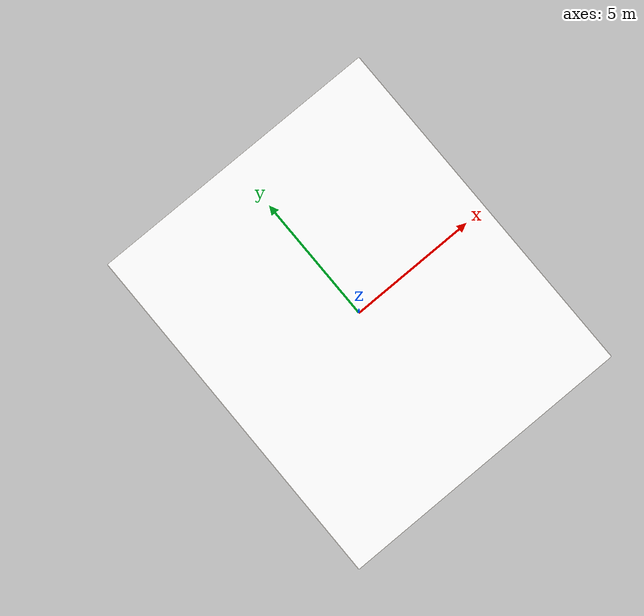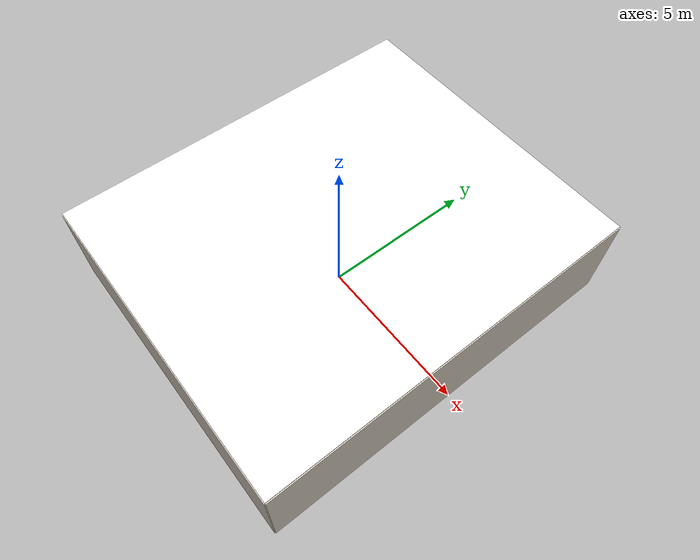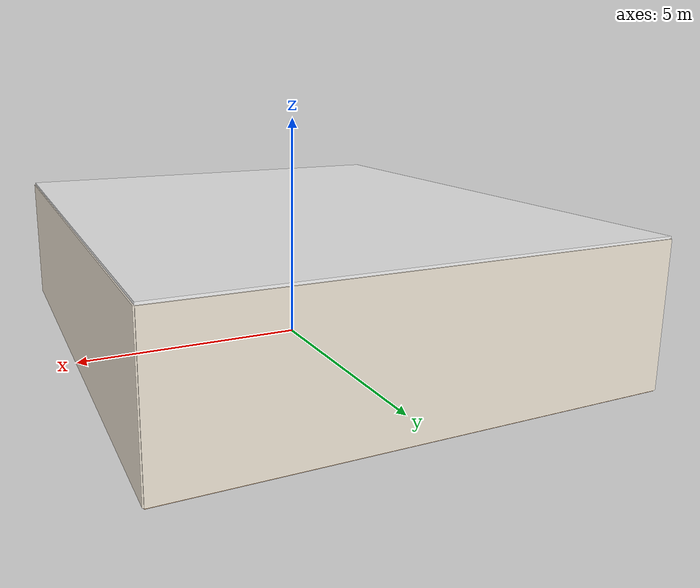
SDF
<?xml version="1.0" ?>
<sdf version="1.6">
  <world name="living_room">

    <!-- ===== Physics & Scene ===== -->
    <physics type="ode">
      <real_time_update_rate>1000</real_time_update_rate>
      <max_step_size>0.001</max_step_size>
    </physics>

    <scene>
      <ambient>0.6 0.6 0.6 1</ambient>
      <background>0.7 0.8 0.9 1</background>
      <shadows>true</shadows>
    </scene>

    <!-- ===== Lighting ===== -->
    <light name="ceiling_light_1" type="point">
      <pose>-2.5 -3.0 2.8 0 0 0</pose>
      <diffuse>1 1 0.9 1</diffuse>
      <specular>0.3 0.3 0.3 1</specular>
      <attenuation>
        <range>20</range>
        <constant>0.4</constant>
        <linear>0.01</linear>
        <quadratic>0.001</quadratic>
      </attenuation>
      <cast_shadows>true</cast_shadows>
    </light>

    <light name="ceiling_light_2" type="point">
      <pose>2.5 3.0 2.8 0 0 0</pose>
      <diffuse>1 1 0.9 1</diffuse>
      <specular>0.3 0.3 0.3 1</specular>
      <attenuation>
        <range>20</range>
        <constant>0.4</constant>
        <linear>0.01</linear>
        <quadratic>0.001</quadratic>
      </attenuation>
      <cast_shadows>true</cast_shadows>
    </light>

    <light name="sun" type="directional">
      <cast_shadows>true</cast_shadows>
      <pose>0 0 10 0 0 0</pose>
      <diffuse>0.8 0.8 0.8 1</diffuse>
      <specular>0.2 0.2 0.2 1</specular>
      <direction>-0.5 0.1 -0.9</direction>
    </light>

    <!--   ROOM  10 m (X) x 12 m (Y), 3.0 m tall              -->
    <!--   Origin at room centre                               -->
    <!--   Half-extents: hx=5.0, hy=6.0                       -->

    <!-- FLOOR -->
    <model name="floor">
      <static>true</static>
      <pose>0 0 0 0 0 0</pose>
      <link name="link">
        <collision name="collision">
          <geometry><box><size>10.0 12.0 0.05</size></box></geometry>
        </collision>
        <visual name="visual">
          <geometry><box><size>10.0 12.0 0.05</size></box></geometry>
          <material>
            <ambient>0.65 0.50 0.35 1</ambient>
            <diffuse>0.65 0.50 0.35 1</diffuse>
          </material>
        </visual>
      </link>
    </model>

    <!-- CEILING -->
    <model name="ceiling">
      <static>true</static>
      <pose>0 0 3.025 0 0 0</pose>
      <link name="link">
        <collision name="collision">
          <geometry><box><size>10.0 12.0 0.05</size></box></geometry>
        </collision>
        <visual name="visual">
          <geometry><box><size>10.0 12.0 0.05</size></box></geometry>
          <material>
            <ambient>0.95 0.95 0.95 1</ambient>
            <diffuse>0.95 0.95 0.95 1</diffuse>
          </material>
        </visual>
      </link>
    </model>

    <!-- WALL North (y=+6.0) -->
    <model name="wall_north">
      <static>true</static>
      <pose>0 6.0 1.50 0 0 0</pose>
      <link name="link">
        <collision name="collision">
          <geometry><box><size>10.0 0.05 3.0</size></box></geometry>
        </collision>
        <visual name="visual">
          <geometry><box><size>10.0 0.05 3.0</size></box></geometry>
          <material><ambient>0.92 0.88 0.82 1</ambient><diffuse>0.92 0.88 0.82 1</diffuse></material>
        </visual>
      </link>
    </model>

    <!-- WALL South (y=-6.0) -->
    <model name="wall_south">
      <static>true</static>
      <pose>0 -6.0 1.50 0 0 0</pose>
      <link name="link">
        <collision name="collision">
          <geometry><box><size>10.0 0.05 3.0</size></box></geometry>
        </collision>
        <visual name="visual">
          <geometry><box><size>10.0 0.05 3.0</size></box></geometry>
          <material><ambient>0.92 0.88 0.82 1</ambient><diffuse>0.92 0.88 0.82 1</diffuse></material>
        </visual>
      </link>
    </model>

    <!-- WALL East (x=+5.0) -->
    <model name="wall_east">
      <static>true</static>
      <pose>5.0 0 1.50 0 0 0</pose>
      <link name="link">
        <collision name="collision">
          <geometry><box><size>0.05 12.0 3.0</size></box></geometry>
        </collision>
        <visual name="visual">
          <geometry><box><size>0.05 12.0 3.0</size></box></geometry>
          <material><ambient>0.92 0.88 0.82 1</ambient><diffuse>0.92 0.88 0.82 1</diffuse></material>
        </visual>
      </link>
    </model>

    <!-- WALL West (x=-5.0) -->
    <model name="wall_west">
      <static>true</static>
      <pose>-5.0 0 1.50 0 0 0</pose>
      <link name="link">
        <collision name="collision">
          <geometry><box><size>0.05 12.0 3.0</size></box></geometry>
        </collision>
        <visual name="visual">
          <geometry><box><size>0.05 12.0 3.0</size></box></geometry>
          <material><ambient>0.92 0.88 0.82 1</ambient><diffuse>0.92 0.88 0.82 1</diffuse></material>
        </visual>
      </link>
    </model>

    <!--   SOFA – against North wall                           -->

    <model name="sofa_seat">
      <static>true</static>
      <pose>0 4.60 0.22 0 0 0</pose>
      <link name="link">
        <collision name="collision"><geometry><box><size>2.20 0.90 0.40</size></box></geometry></collision>
        <visual name="visual"><geometry><box><size>2.20 0.90 0.40</size></box></geometry>
          <material><ambient>0.25 0.35 0.55 1</ambient><diffuse>0.25 0.35 0.55 1</diffuse></material></visual>
      </link>
    </model>

    <model name="sofa_back">
      <static>true</static>
      <pose>0 5.03 0.65 0 0 0</pose>
      <link name="link">
        <collision name="collision"><geometry><box><size>2.20 0.12 0.62</size></box></geometry></collision>
        <visual name="visual"><geometry><box><size>2.20 0.12 0.62</size></box></geometry>
          <material><ambient>0.22 0.31 0.50 1</ambient><diffuse>0.22 0.31 0.50 1</diffuse></material></visual>
      </link>
    </model>

    <model name="sofa_arm_left">
      <static>true</static>
      <pose>-1.06 4.60 0.52 0 0 0</pose>
      <link name="link">
        <collision name="collision"><geometry><box><size>0.12 0.90 0.56</size></box></geometry></collision>
        <visual name="visual"><geometry><box><size>0.12 0.90 0.56</size></box></geometry>
          <material><ambient>0.22 0.31 0.50 1</ambient><diffuse>0.22 0.31 0.50 1</diffuse></material></visual>
      </link>
    </model>

    <model name="sofa_arm_right">
      <static>true</static>
      <pose>1.06 4.60 0.52 0 0 0</pose>
      <link name="link">
        <collision name="collision"><geometry><box><size>0.12 0.90 0.56</size></box></geometry></collision>
        <visual name="visual"><geometry><box><size>0.12 0.90 0.56</size></box></geometry>
          <material><ambient>0.22 0.31 0.50 1</ambient><diffuse>0.22 0.31 0.50 1</diffuse></material></visual>
      </link>
    </model>

    <!--   COFFEE TABLE – in front of sofa                     -->

    <model name="coffee_table_top">
      <static>true</static>
      <pose>0 3.20 0.40 0 0 0</pose>
      <link name="link">
        <collision name="collision"><geometry><box><size>1.20 0.60 0.05</size></box></geometry></collision>
        <visual name="visual"><geometry><box><size>1.20 0.60 0.05</size></box></geometry>
          <material><ambient>0.45 0.28 0.12 1</ambient><diffuse>0.45 0.28 0.12 1</diffuse></material></visual>
      </link>
    </model>

    <model name="ct_leg_fl"><static>true</static><pose>-0.55 2.95 0.19 0 0 0</pose>
      <link name="link"><collision name="c"><geometry><box><size>0.06 0.06 0.38</size></box></geometry></collision>
        <visual name="v"><geometry><box><size>0.06 0.06 0.38</size></box></geometry>
          <material><ambient>0.30 0.18 0.08 1</ambient><diffuse>0.30 0.18 0.08 1</diffuse></material></visual></link>
    </model>
    <model name="ct_leg_fr"><static>true</static><pose>0.55 2.95 0.19 0 0 0</pose>
      <link name="link"><collision name="c"><geometry><box><size>0.06 0.06 0.38</size></box></geometry></collision>
        <visual name="v"><geometry><box><size>0.06 0.06 0.38</size></box></geometry>
          <material><ambient>0.30 0.18 0.08 1</ambient><diffuse>0.30 0.18 0.08 1</diffuse></material></visual></link>
    </model>
    <model name="ct_leg_bl"><static>true</static><pose>-0.55 3.45 0.19 0 0 0</pose>
      <link name="link"><collision name="c"><geometry><box><size>0.06 0.06 0.38</size></box></geometry></collision>
        <visual name="v"><geometry><box><size>0.06 0.06 0.38</size></box></geometry>
          <material><ambient>0.30 0.18 0.08 1</ambient><diffuse>0.30 0.18 0.08 1</diffuse></material></visual></link>
    </model>
    <model name="ct_leg_br"><static>true</static><pose>0.55 3.45 0.19 0 0 0</pose>
      <link name="link"><collision name="c"><geometry><box><size>0.06 0.06 0.38</size></box></geometry></collision>
        <visual name="v"><geometry><box><size>0.06 0.06 0.38</size></box></geometry>
          <material><ambient>0.30 0.18 0.08 1</ambient><diffuse>0.30 0.18 0.08 1</diffuse></material></visual></link>
    </model>

    <!--   ARMCHAIR LEFT – west side, angled toward table      -->

    <model name="chair_left_seat">
      <static>true</static>
      <pose>-2.20 3.20 0.22 0 0 0.5236</pose>
      <link name="link">
        <collision name="collision"><geometry><box><size>0.80 0.80 0.38</size></box></geometry></collision>
        <visual name="visual"><geometry><box><size>0.80 0.80 0.38</size></box></geometry>
          <material><ambient>0.55 0.28 0.18 1</ambient><diffuse>0.55 0.28 0.18 1</diffuse></material></visual>
      </link>
    </model>

    <model name="chair_left_back">
      <static>true</static>
      <pose>-2.55 3.48 0.62 0 0 0.5236</pose>
      <link name="link">
        <collision name="collision"><geometry><box><size>0.10 0.80 0.56</size></box></geometry></collision>
        <visual name="visual"><geometry><box><size>0.10 0.80 0.56</size></box></geometry>
          <material><ambient>0.48 0.24 0.14 1</ambient><diffuse>0.48 0.24 0.14 1</diffuse></material></visual>
      </link>
    </model>

    <!--   ARMCHAIR RIGHT – east side, angled toward table     -->

    <model name="chair_right_seat">
      <static>true</static>
      <pose>2.20 3.20 0.22 0 0 -0.5236</pose>
      <link name="link">
        <collision name="collision"><geometry><box><size>0.80 0.80 0.38</size></box></geometry></collision>
        <visual name="visual"><geometry><box><size>0.80 0.80 0.38</size></box></geometry>
          <material><ambient>0.55 0.28 0.18 1</ambient><diffuse>0.55 0.28 0.18 1</diffuse></material></visual>
      </link>
    </model>

    <model name="chair_right_back">
      <static>true</static>
      <pose>2.55 3.48 0.62 0 0 -0.5236</pose>
      <link name="link">
        <collision name="collision"><geometry><box><size>0.10 0.80 0.56</size></box></geometry></collision>
        <visual name="visual"><geometry><box><size>0.10 0.80 0.56</size></box></geometry>
          <material><ambient>0.48 0.24 0.14 1</ambient><diffuse>0.48 0.24 0.14 1</diffuse></material></visual>
      </link>
    </model>

    <!--   DINING TABLE – centre of room with 4 chairs         -->

    <model name="dining_table_top">
      <static>true</static>
      <pose>0 0 0.73 0 0 0</pose>
      <link name="link">
        <collision name="collision"><geometry><box><size>1.60 0.90 0.05</size></box></geometry></collision>
        <visual name="visual"><geometry><box><size>1.60 0.90 0.05</size></box></geometry>
          <material><ambient>0.45 0.28 0.12 1</ambient><diffuse>0.45 0.28 0.12 1</diffuse></material></visual>
      </link>
    </model>

    <model name="dt_leg_fl"><static>true</static><pose>-0.72 -0.38 0.35 0 0 0</pose>
      <link name="link"><collision name="c"><geometry><box><size>0.07 0.07 0.70</size></box></geometry></collision>
        <visual name="v"><geometry><box><size>0.07 0.07 0.70</size></box></geometry>
          <material><ambient>0.30 0.18 0.08 1</ambient><diffuse>0.30 0.18 0.08 1</diffuse></material></visual></link>
    </model>
    <model name="dt_leg_fr"><static>true</static><pose>0.72 -0.38 0.35 0 0 0</pose>
      <link name="link"><collision name="c"><geometry><box><size>0.07 0.07 0.70</size></box></geometry></collision>
        <visual name="v"><geometry><box><size>0.07 0.07 0.70</size></box></geometry>
          <material><ambient>0.30 0.18 0.08 1</ambient><diffuse>0.30 0.18 0.08 1</diffuse></material></visual></link>
    </model>
    <model name="dt_leg_bl"><static>true</static><pose>-0.72 0.38 0.35 0 0 0</pose>
      <link name="link"><collision name="c"><geometry><box><size>0.07 0.07 0.70</size></box></geometry></collision>
        <visual name="v"><geometry><box><size>0.07 0.07 0.70</size></box></geometry>
          <material><ambient>0.30 0.18 0.08 1</ambient><diffuse>0.30 0.18 0.08 1</diffuse></material></visual></link>
    </model>
    <model name="dt_leg_br"><static>true</static><pose>0.72 0.38 0.35 0 0 0</pose>
      <link name="link"><collision name="c"><geometry><box><size>0.07 0.07 0.70</size></box></geometry></collision>
        <visual name="v"><geometry><box><size>0.07 0.07 0.70</size></box></geometry>
          <material><ambient>0.30 0.18 0.08 1</ambient><diffuse>0.30 0.18 0.08 1</diffuse></material></visual></link>
    </model>

    <model name="dchair_south"><static>true</static><pose>0 -0.90 0.22 0 0 0</pose>
      <link name="link"><collision name="c"><geometry><box><size>0.48 0.48 0.40</size></box></geometry></collision>
        <visual name="v"><geometry><box><size>0.48 0.48 0.40</size></box></geometry>
          <material><ambient>0.60 0.35 0.15 1</ambient><diffuse>0.60 0.35 0.15 1</diffuse></material></visual></link>
    </model>
    <model name="dchair_north"><static>true</static><pose>0 0.90 0.22 0 0 3.1416</pose>
      <link name="link"><collision name="c"><geometry><box><size>0.48 0.48 0.40</size></box></geometry></collision>
        <visual name="v"><geometry><box><size>0.48 0.48 0.40</size></box></geometry>
          <material><ambient>0.60 0.35 0.15 1</ambient><diffuse>0.60 0.35 0.15 1</diffuse></material></visual></link>
    </model>
    <model name="dchair_east"><static>true</static><pose>1.25 0 0.22 0 0 -1.5708</pose>
      <link name="link"><collision name="c"><geometry><box><size>0.48 0.48 0.40</size></box></geometry></collision>
        <visual name="v"><geometry><box><size>0.48 0.48 0.40</size></box></geometry>
          <material><ambient>0.60 0.35 0.15 1</ambient><diffuse>0.60 0.35 0.15 1</diffuse></material></visual></link>
    </model>
    <model name="dchair_west"><static>true</static><pose>-1.25 0 0.22 0 0 1.5708</pose>
      <link name="link"><collision name="c"><geometry><box><size>0.48 0.48 0.40</size></box></geometry></collision>
        <visual name="v"><geometry><box><size>0.48 0.48 0.40</size></box></geometry>
          <material><ambient>0.60 0.35 0.15 1</ambient><diffuse>0.60 0.35 0.15 1</diffuse></material></visual></link>
    </model>

    <!--   TV STAND + SCREEN – South wall                      -->

    <model name="tv_stand">
      <static>true</static>
      <pose>0 -5.55 0.25 0 0 0</pose>
      <link name="link">
        <collision name="collision"><geometry><box><size>1.80 0.40 0.45</size></box></geometry></collision>
        <visual name="visual"><geometry><box><size>1.80 0.40 0.45</size></box></geometry>
          <material><ambient>0.18 0.18 0.18 1</ambient><diffuse>0.18 0.18 0.18 1</diffuse></material></visual>
      </link>
    </model>

    <model name="tv_screen">
      <static>true</static>
      <pose>0 -5.72 1.05 0 0 0</pose>
      <link name="link">
        <collision name="collision"><geometry><box><size>1.55 0.07 0.88</size></box></geometry></collision>
        <visual name="visual"><geometry><box><size>1.55 0.07 0.88</size></box></geometry>
          <material><ambient>0.05 0.05 0.05 1</ambient><diffuse>0.05 0.05 0.05 1</diffuse></material></visual>
      </link>
    </model>

    <!--   BOOKSHELF – West wall                               -->

    <model name="bookshelf">
      <static>true</static>
      <pose>-4.75 -2.50 0.95 0 0 0</pose>
      <link name="link">
        <collision name="collision"><geometry><box><size>0.30 1.20 1.90</size></box></geometry></collision>
        <visual name="visual"><geometry><box><size>0.30 1.20 1.90</size></box></geometry>
          <material><ambient>0.50 0.32 0.14 1</ambient><diffuse>0.50 0.32 0.14 1</diffuse></material></visual>
      </link>
    </model>

    <!--   SIDE TABLE – East wall                              -->

    <model name="side_table_top">
      <static>true</static>
      <pose>3.80 -2.50 0.74 0 0 0</pose>
      <link name="link">
        <collision name="collision"><geometry><box><size>0.90 0.90 0.04</size></box></geometry></collision>
        <visual name="visual"><geometry><box><size>0.90 0.90 0.04</size></box></geometry>
          <material><ambient>0.45 0.28 0.12 1</ambient><diffuse>0.45 0.28 0.12 1</diffuse></material></visual>
      </link>
    </model>

    <model name="side_table_base">
      <static>true</static>
      <pose>3.80 -2.50 0.36 0 0 0</pose>
      <link name="link">
        <collision name="collision"><geometry><box><size>0.08 0.08 0.72</size></box></geometry></collision>
        <visual name="visual"><geometry><box><size>0.08 0.08 0.72</size></box></geometry>
          <material><ambient>0.30 0.18 0.08 1</ambient><diffuse>0.30 0.18 0.08 1</diffuse></material></visual>
      </link>
    </model>

    <!--   RANDOM OBJECTS                                       -->

    <!-- 1. Vase on coffee table -->
    <model name="vase">
      <static>false</static>
      <pose>0.38 3.20 0.52 0 0 0</pose>
      <link name="link">
        <inertial><mass>0.5</mass></inertial>
        <collision name="collision"><geometry><cylinder><radius>0.07</radius><length>0.24</length></cylinder></geometry></collision>
        <visual name="visual"><geometry><cylinder><radius>0.07</radius><length>0.24</length></cylinder></geometry>
          <material><ambient>0.80 0.50 0.10 1</ambient><diffuse>0.80 0.50 0.10 1</diffuse></material></visual>
      </link>
    </model>

    <!-- 2. Remote on coffee table -->
    <model name="remote_control">
      <static>false</static>
      <pose>-0.25 3.15 0.44 0 0 0.3</pose>
      <link name="link">
        <inertial><mass>0.15</mass></inertial>
        <collision name="collision"><geometry><box><size>0.18 0.06 0.02</size></box></geometry></collision>
        <visual name="visual"><geometry><box><size>0.18 0.06 0.02</size></box></geometry>
          <material><ambient>0.10 0.10 0.10 1</ambient><diffuse>0.10 0.10 0.10 1</diffuse></material></visual>
      </link>
    </model>

    <!-- 3. Mug on side table -->
    <model name="mug">
      <static>false</static>
      <pose>3.90 -2.45 0.81 0 0 0</pose>
      <link name="link">
        <inertial><mass>0.3</mass></inertial>
        <collision name="collision"><geometry><cylinder><radius>0.04</radius><length>0.10</length></cylinder></geometry></collision>
        <visual name="visual"><geometry><cylinder><radius>0.04</radius><length>0.10</length></cylinder></geometry>
          <material><ambient>0.85 0.20 0.20 1</ambient><diffuse>0.85 0.20 0.20 1</diffuse></material></visual>
      </link>
    </model>

    <!-- 4. Ball near east wall -->
    <model name="ball">
      <static>false</static>
      <pose>4.20 1.50 0.09 0 0 0</pose>
      <link name="link">
        <inertial><mass>0.1</mass></inertial>
        <collision name="collision"><geometry><sphere><radius>0.09</radius></sphere></geometry></collision>
        <visual name="visual"><geometry><sphere><radius>0.09</radius></sphere></geometry>
          <material><ambient>0.90 0.80 0.10 1</ambient><diffuse>0.90 0.80 0.10 1</diffuse></material></visual>
      </link>
    </model>

    <!-- 5. Book stack on bookshelf -->
    <model name="book_stack">
      <static>true</static>
      <pose>-4.75 -2.45 1.72 0 0 0</pose>
      <link name="link">
        <collision name="collision"><geometry><box><size>0.20 0.25 0.20</size></box></geometry></collision>
        <visual name="visual"><geometry><box><size>0.20 0.25 0.20</size></box></geometry>
          <material><ambient>0.20 0.40 0.65 1</ambient><diffuse>0.20 0.40 0.65 1</diffuse></material></visual>
      </link>
    </model>

    <!-- 6. Floor lamp NE corner -->
    <model name="floor_lamp_pole">
      <static>true</static>
      <pose>4.50 5.50 0.95 0 0 0</pose>
      <link name="link">
        <collision name="collision"><geometry><cylinder><radius>0.04</radius><length>1.90</length></cylinder></geometry></collision>
        <visual name="visual"><geometry><cylinder><radius>0.04</radius><length>1.90</length></cylinder></geometry>
          <material><ambient>0.70 0.65 0.60 1</ambient><diffuse>0.70 0.65 0.60 1</diffuse></material></visual>
      </link>
    </model>

    <model name="floor_lamp_shade">
      <static>true</static>
      <pose>4.50 5.50 1.98 0 0 0</pose>
      <link name="link">
        <collision name="collision"><geometry><cylinder><radius>0.20</radius><length>0.24</length></cylinder></geometry></collision>
        <visual name="visual"><geometry><cylinder><radius>0.20</radius><length>0.24</length></cylinder></geometry>
          <material><ambient>0.98 0.92 0.70 1</ambient><diffuse>0.98 0.92 0.70 1</diffuse></material></visual>
      </link>
    </model>

    <!-- 7. Potted plant NW corner -->
    <model name="plant_pot">
      <static>true</static>
      <pose>-4.50 5.50 0.14 0 0 0</pose>
      <link name="link">
        <collision name="collision"><geometry><cylinder><radius>0.14</radius><length>0.28</length></cylinder></geometry></collision>
        <visual name="visual"><geometry><cylinder><radius>0.14</radius><length>0.28</length></cylinder></geometry>
          <material><ambient>0.50 0.30 0.15 1</ambient><diffuse>0.50 0.30 0.15 1</diffuse></material></visual>
      </link>
    </model>

    <model name="plant_foliage">
      <static>true</static>
      <pose>-4.50 5.50 0.58 0 0 0</pose>
      <link name="link">
        <collision name="collision"><geometry><sphere><radius>0.28</radius></sphere></geometry></collision>
        <visual name="visual"><geometry><sphere><radius>0.28</radius></sphere></geometry>
          <material><ambient>0.15 0.55 0.15 1</ambient><diffuse>0.15 0.55 0.15 1</diffuse></material></visual>
      </link>
    </model>

    <!-- 8. Cushion on sofa -->
    <model name="cushion">
      <static>false</static>
      <pose>-0.70 4.60 0.47 0 0 0.3</pose>
      <link name="link">
        <inertial><mass>0.4</mass></inertial>
        <collision name="collision"><geometry><box><size>0.40 0.40 0.14</size></box></geometry></collision>
        <visual name="visual"><geometry><box><size>0.40 0.40 0.14</size></box></geometry>
          <material><ambient>0.85 0.70 0.20 1</ambient><diffuse>0.85 0.70 0.20 1</diffuse></material></visual>
      </link>
    </model>

    <!-- 9. Rug under lounge area -->
    <model name="rug">
      <static>true</static>
      <pose>0 3.50 0.028 0 0 0</pose>
      <link name="link">
        <collision name="collision"><geometry><box><size>3.00 2.50 0.01</size></box></geometry></collision>
        <visual name="visual"><geometry><box><size>3.00 2.50 0.01</size></box></geometry>
          <material><ambient>0.60 0.18 0.18 1</ambient><diffuse>0.60 0.18 0.18 1</diffuse></material></visual>
      </link>
    </model>

    <!-- 10. Laptop on side table -->
    <model name="laptop">
      <static>false</static>
      <pose>3.70 -2.60 0.78 0 0 0</pose>
      <link name="link">
        <inertial><mass>1.5</mass></inertial>
        <collision name="collision"><geometry><box><size>0.34 0.24 0.02</size></box></geometry></collision>
        <visual name="visual"><geometry><box><size>0.34 0.24 0.02</size></box></geometry>
          <material><ambient>0.70 0.70 0.72 1</ambient><diffuse>0.70 0.70 0.72 1</diffuse></material></visual>
      </link>
    </model>

    <!-- 11. Bowl on dining table -->
    <model name="bowl">
      <static>false</static>
      <pose>0 0 0.80 0 0 0</pose>
      <link name="link">
        <inertial><mass>0.6</mass></inertial>
        <collision name="collision"><geometry><cylinder><radius>0.14</radius><length>0.08</length></cylinder></geometry></collision>
        <visual name="visual"><geometry><cylinder><radius>0.14</radius><length>0.08</length></cylinder></geometry>
          <material><ambient>0.75 0.75 0.75 1</ambient><diffuse>0.75 0.75 0.75 1</diffuse></material></visual>
      </link>
    </model>

    <!-- 12. Backpack on floor near west wall -->
    <model name="backpack">
      <static>false</static>
      <pose>-4.30 0.50 0.20 0 0 0</pose>
      <link name="link">
        <inertial><mass>2.0</mass></inertial>
        <collision name="collision"><geometry><box><size>0.32 0.18 0.40</size></box></geometry></collision>
        <visual name="visual"><geometry><box><size>0.32 0.18 0.40</size></box></geometry>
          <material><ambient>0.20 0.20 0.50 1</ambient><diffuse>0.20 0.20 0.50 1</diffuse></material></visual>
      </link>
    </model>

    <!-- 13. Second floor lamp SW corner -->
    <model name="floor_lamp2_pole">
      <static>true</static>
      <pose>-4.50 -5.50 0.95 0 0 0</pose>
      <link name="link">
        <collision name="collision"><geometry><cylinder><radius>0.04</radius><length>1.90</length></cylinder></geometry></collision>
        <visual name="visual"><geometry><cylinder><radius>0.04</radius><length>1.90</length></cylinder></geometry>
          <material><ambient>0.70 0.65 0.60 1</ambient><diffuse>0.70 0.65 0.60 1</diffuse></material></visual>
      </link>
    </model>

    <model name="floor_lamp2_shade">
      <static>true</static>
      <pose>-4.50 -5.50 1.98 0 0 0</pose>
      <link name="link">
        <collision name="collision"><geometry><cylinder><radius>0.20</radius><length>0.24</length></cylinder></geometry></collision>
        <visual name="visual"><geometry><cylinder><radius>0.20</radius><length>0.24</length></cylinder></geometry>
          <material><ambient>0.98 0.92 0.70 1</ambient><diffuse>0.98 0.92 0.70 1</diffuse></material></visual>
      </link>
    </model>

  </world>
</sdf>
